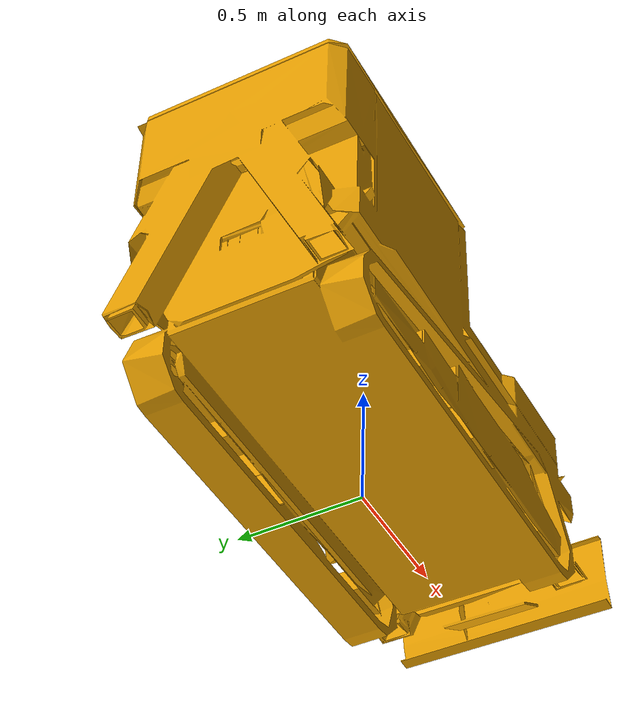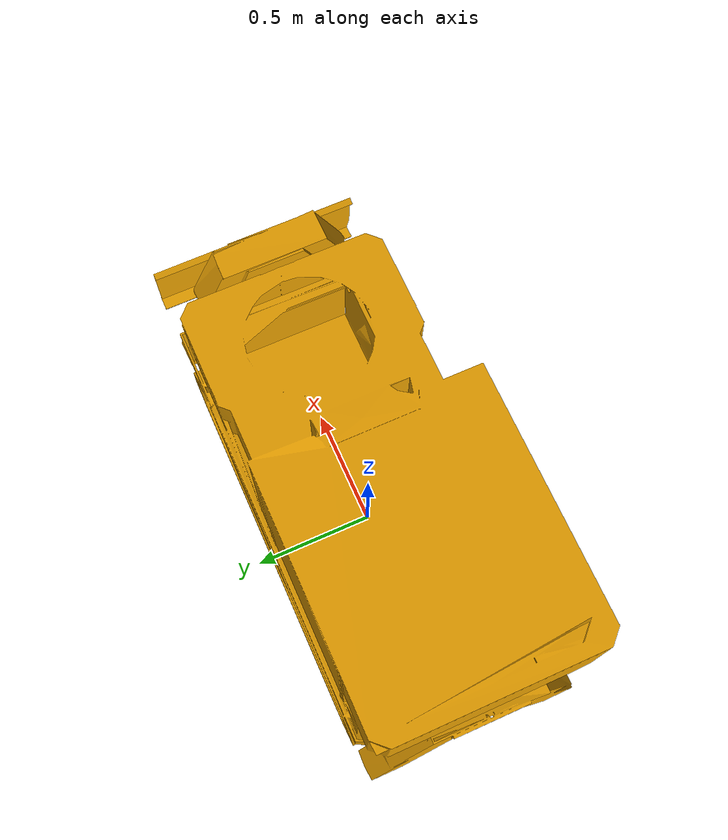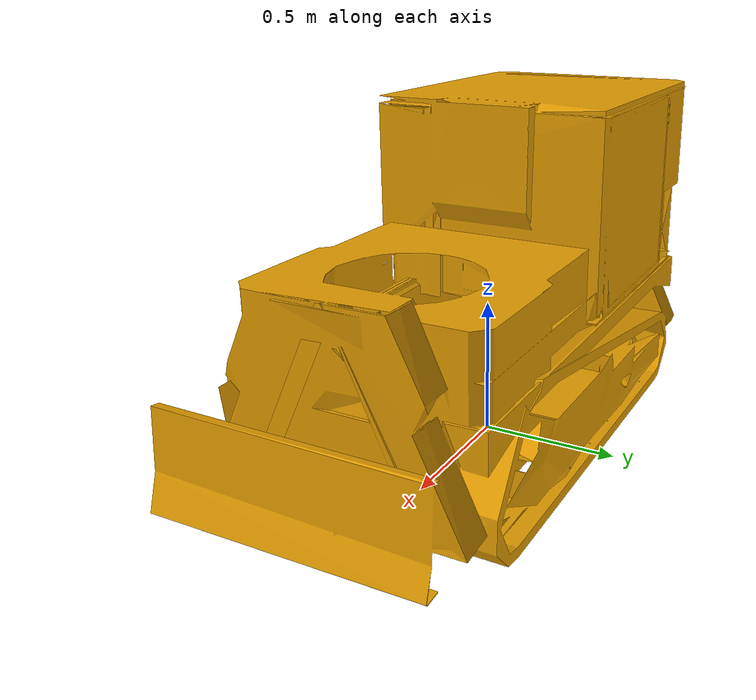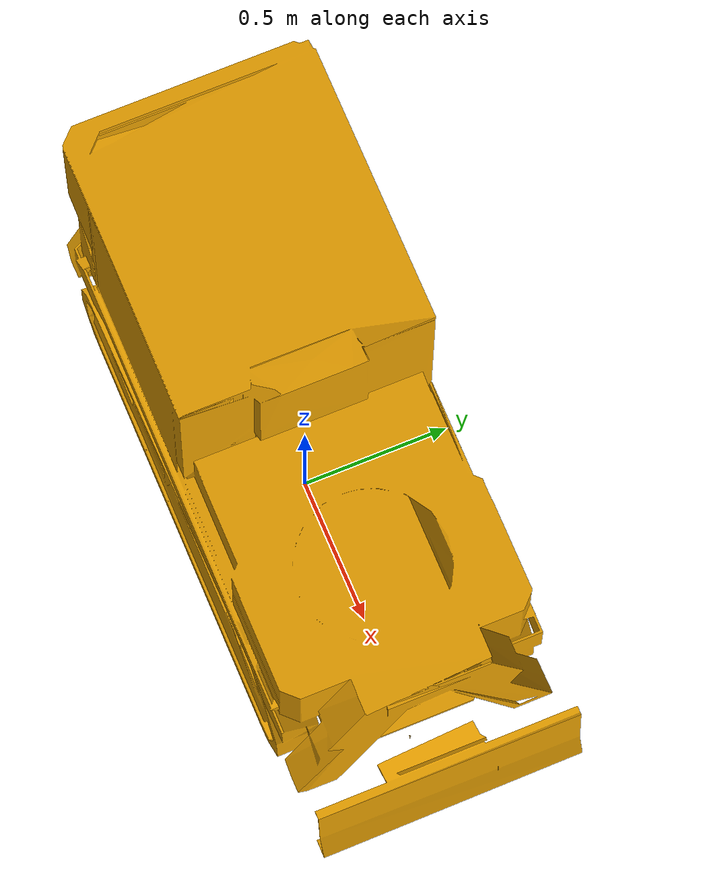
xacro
<?xml version="1.0" ?>

<robot name="omnimove" xmlns:xacro="http://wiki.ros.org/xacro">
  <xacro:include filename="$(find kuka_omnimove_e575_support)/urdf/caterpillar.xacro"/>
  <xacro:omnimove prefix="caterpillar_"/> <!-- need to make this a config parameter -->
  <xacro:omnimove_ros2_control name="caterpillar"/>
</robot>

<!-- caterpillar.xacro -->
<robot xmlns:xacro="http://wiki.ros.org/xacro" name="omnimove">
  <xacro:macro name="omnimove" params="prefix">
    prefix="${prefix}"
      <link name="${prefix}base">
        <visual>
          <origin xyz="0 0 0" rpy="0 0 0" />
          <geometry>
            <mesh filename="package://kuka_omnimove_e575_support/meshes/caterpillar_simplified.dae" />
          </geometry>
        </visual>
        <collision>
          <origin xyz="0 0 0" rpy="0 0 0" />
          <geometry>
            <mesh filename="package://kuka_omnimove_e575_support/meshes/caterpillar_simplified.stl" />
          </geometry>
        </collision>
      </link>
  </xacro:macro>
   <xacro:macro name="omnimove_ros2_control" params="name">
            <ros2_control name="omnimove" type="system">
            <hardware>
                <plugin>omnimove::KukaUTV3HardwareInterface</plugin>
                <param name ="host">127.0.0.1</param>
                <param name="port">24000</param>
                <param name="agv_type">caterpillar</param>
            </hardware>
           </ros2_control>
  </xacro:macro>
</robot>
